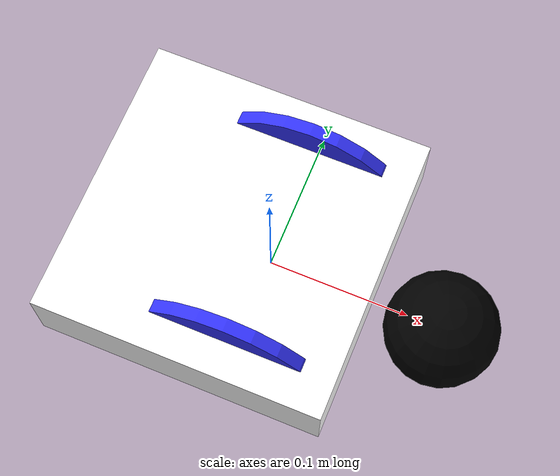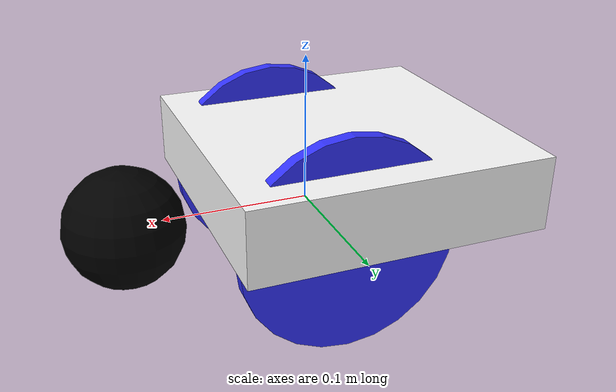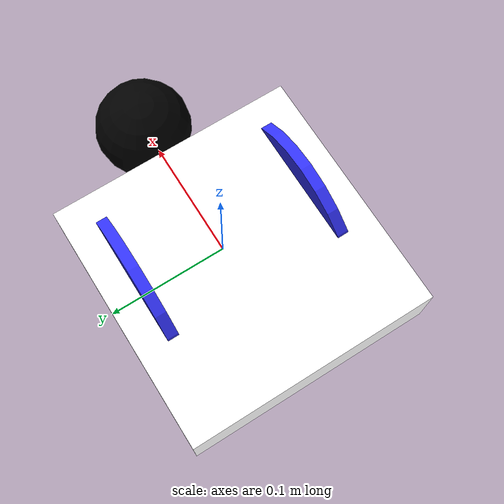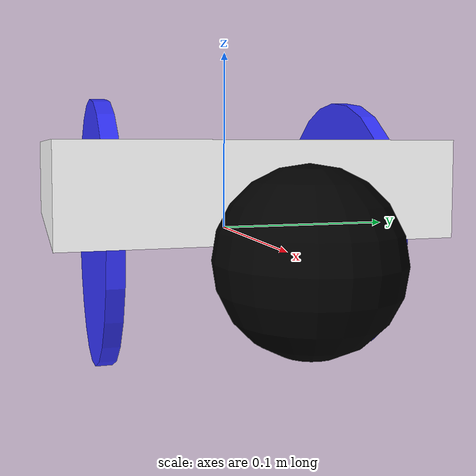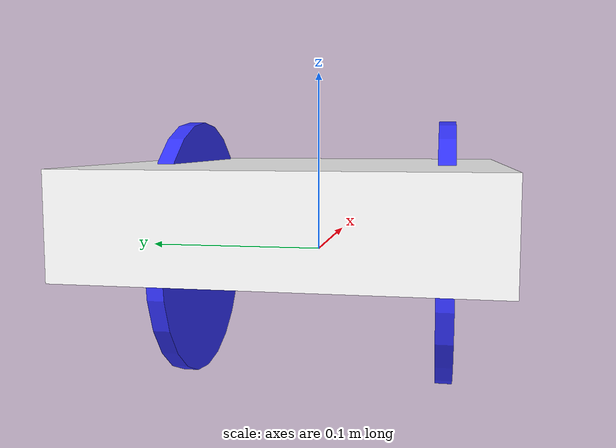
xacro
<?xml version="1.0"?>
<robot xmlns:xacro="http://www.ros.org/wiki/xacro">

  <xacro:include filename="inertial_macros.xacro"/>

  <material name="white">
    <color rgba="1 1 1 1" />
  </material>

  <material name="orange">
    <color rgba="1 0.3 0.1 1" />
  </material>

  <material name="blue">
    <color rgba="0.2 0.2 1 1" />
  </material>

  <material name="black">
    <color rgba="0 0 0 1" />
  </material>

  <material name="red">
    <color rgba="1 0 0 1" />
  </material>

  <!-- BASE LINK -->
  <link name="base_link">

  </link>

  <joint name="base_footprint_joint" type="fixed">
    <parent link="base_link"/>
    <child link="base_footprint"/>
    <origin xyz="0 0 0" rpy="0 0 0"/>
  </joint>

  <link name="base_footprint">

  </link>

  <!-- CHASSIS LINK -->
  <joint name="chassis_joint" type="fixed">
    <parent link="base_link" />
    <child link="chassis" />
    <origin xyz="-0.025 0 0.025" />
  </joint>

  <link name="chassis">
    <visual>
      <origin xyz="0 0 0" />
      <geometry>
        <box size="0.2 0.2 0.05" />
      </geometry>
      <material name="white" />
    </visual>

    <collision>
      <origin xyz="0 0 0" />
      <geometry>
        <box size="0.2 0.2 0.05" />
      </geometry>
    </collision>

    <xacro:inertial_box mass="0.5" x="0.2" y="0.2" z="0.05">
      <origin xyz="0 0 0" rpy="0 0 0"/>
    </xacro:inertial_box>
  </link>

  <gazebo reference="chassis">
    <material>Gazebo/White </material>
  </gazebo>

  <!-- LEFT WHEEL LINK -->

  <joint name="left_wheel_joint" type="continuous">
    <parent link="base_link" />
    <child link="left_wheel" />
    <origin xyz="0 0.072 0" rpy="-${pi/2} 0 0" />
    <axis xyz="0 0 1" />
  </joint>

  <link name="left_wheel">
    <visual>
      <geometry>
        <cylinder radius="0.0725" length="0.009" />
      </geometry>
      <material name="blue" />
    </visual>

    <collision>
      <geometry>
        <sphere radius="0.0725"/>
      </geometry>
    </collision>

    <xacro:inertial_cylinder mass="0.1" length="0.009" radius="0.0725">
      <origin xyz="0 0 0" rpy="0 0 0"/>
    </xacro:inertial_cylinder>
  </link>

  <gazebo reference="left_wheel">
    <material>Gazebo/Blue </material>
  </gazebo>

  <!-- RIGHT WHEEL LINK -->

  <joint name="right_wheel_joint" type="continuous">
    <parent link="base_link" />
    <child link="right_wheel" />
    <origin xyz="0 -0.072 0" rpy="${pi/2} 0 0" />
    <axis xyz="0 0 -1" />
  </joint>

  <link name="right_wheel">
    <visual>
      <geometry>
        <cylinder radius="0.0725" length="0.009" />
      </geometry>
      <material name="blue" />
    </visual>

    <collision>
      <geometry>
        <sphere radius="0.0725" />
      </geometry>
    </collision>

    <xacro:inertial_cylinder mass="0.1" length="0.009" radius="0.0725">
      <origin xyz="0 0 0" rpy="0 0 0"/>
    </xacro:inertial_cylinder>
  </link>

  <gazebo reference="right_wheel">
    <material>Gazebo/Blue </material>
  </gazebo>

  <!-- CASTER WHEEL LINK-->

  <joint name="caster_wheel_join" type="fixed">
    <parent link="chassis" />
    <child link="caster_wheel" />
    <origin xyz="0.15 0 -0.025" />
  </joint>

  <link name="caster_wheel">
    <visual>
      <geometry>
        <sphere radius="0.04" />
      </geometry>
      <material name="black" />
    </visual>

    <collision>
      <geometry>
        <sphere radius="0.04" />
      </geometry>
    </collision>

    <xacro:inertial_sphere mass="0.1" radius="0.04">
      <origin xyz="0 0 0" rpy="0 0 0"/>
    </xacro:inertial_sphere>
  </link>

  <gazebo reference="caster_wheel">
    <material>Gazebo/Black </material>
    <mu1 value="0.001"/>
    <mu2 value="0.001"/>
  </gazebo>
</robot>
